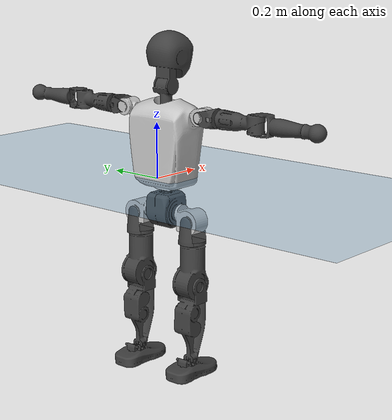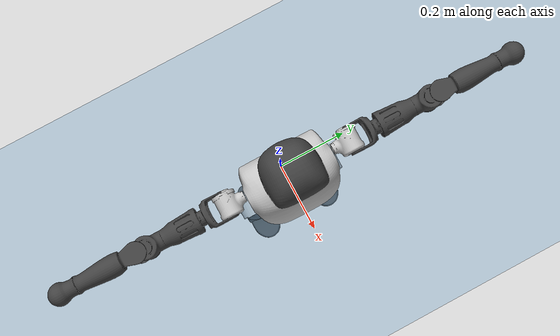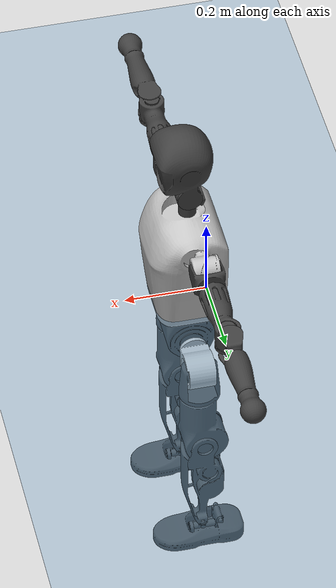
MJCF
<mujoco model="T1">
  <compiler angle="radian" assetdir="assets" balanceinertia="true" inertiafromgeom="false"/>

  <option timestep="0.005" density="1.2" viscosity="2e-05"/>

  <size nkey="1"/>

  <visual>
    <quality shadowsize="8192"/>
    <map shadowclip="0.5"/>
  </visual>

  <default>
    <default class="/">
      <joint armature="0.01" damping="0.01" frictionloss="0.1"/>
      <geom contype="0" conaffinity="0" group="1" solref="-1000 -80"/>
      <site size="0.01 0.005 0.005" group="5"/>
      <general forcelimited="true" biastype="affine" gainprm="25" biasprm="0 -25 -0.6"/>
      <default class="t1">
        <geom rgba="0.25 0.25 0.25 1"/>
        <default class="visual">
          <geom type="mesh" group="2"/>
        </default>
        <default class="collision">
          <geom group="3"/>
        </default>
        <default class="foot">
          <geom size="0.1115 0.05 0.015" type="box" condim="6" group="4" priority="1" solimp="0.015 1 0.015"/>
        </default>
        <default class="reward_collision_sphere">
          <geom group="5" rgba="1 0 0 1"/>
        </default>
      </default>
    </default>
  </default>

  <asset>
    <texture type="skybox" colorspace="auto" name="//unnamed_texture_0" builtin="gradient" rgb1="0.95 0.95 0.95" rgb2="0.95 0.95 0.95" width="100" height="600"/>
    <texture type="2d" colorspace="auto" name="texplane" builtin="checker" rgb1="0.345 0.575 0.748" rgb2="0.345 0.575 0.748" markrgb="1 1 1" width="512" height="512"/>
    <material name="MatPlane" class="/" texture="texplane" texuniform="true" texrepeat="2 2" specular="0.9"/>
    <mesh name="Trunk" class="/" file="Trunk.stl"/>
    <mesh name="H1" class="/" file="H1.stl"/>
    <mesh name="H2" class="/" file="H2.stl"/>
    <mesh name="AL1" class="/" file="AL1.stl"/>
    <mesh name="AL2" class="/" file="AL2.stl"/>
    <mesh name="AL3" class="/" file="AL3.stl"/>
    <mesh name="left_hand_link" class="/" file="left_hand_link.stl"/>
    <mesh name="AR1" class="/" file="AR1.stl"/>
    <mesh name="AR2" class="/" file="AR2.stl"/>
    <mesh name="AR3" class="/" file="AR3.stl"/>
    <mesh name="right_hand_link" class="/" file="right_hand_link.stl"/>
    <mesh name="Waist" class="/" file="Waist.stl"/>
    <mesh name="Hip_Pitch_Left" class="/" file="Hip_Pitch_Left.stl"/>
    <mesh name="Hip_Roll_Left" class="/" file="Hip_Roll_Left.stl"/>
    <mesh name="Hip_Yaw_Left" class="/" file="Hip_Yaw_Left.stl"/>
    <mesh name="Shank_Left" class="/" file="Shank_Left.stl"/>
    <mesh name="Ankle_Cross_Left" class="/" file="Ankle_Cross_Left.stl"/>
    <mesh name="left_foot_link" class="/" file="left_foot_link.stl"/>
    <mesh name="Hip_Pitch_Right" class="/" file="Hip_Pitch_Right.stl"/>
    <mesh name="Hip_Roll_Right" class="/" file="Hip_Roll_Right.stl"/>
    <mesh name="Hip_Yaw_Right" class="/" file="Hip_Yaw_Right.stl"/>
    <mesh name="Shank_Right" class="/" file="Shank_Right.stl"/>
    <mesh name="Ankle_Cross_Right" class="/" file="Ankle_Cross_Right.stl"/>
    <mesh name="right_foot_link" class="/" file="right_foot_link.stl"/>
  </asset>

  <worldbody>
    <geom name="floor" class="/" size="100 100 0.125" type="plane" group="0" material="MatPlane"/>
    <light name="toplight_shadow" class="/" pos="0 0 5" dir="0.0990148 0.0990148 -0.990148" type="directional" ambient="0.04 0.04 0.04" diffuse="0.55 0.55 0.55" specular="0.12 0.12 0.12"/>
    <light name="toplight_fill" class="/" pos="0 0 5" dir="0.0990148 0.0990148 -0.990148" type="directional" castshadow="false" ambient="0.04 0.04 0.04" diffuse="0.3 0.3 0.3" specular="0.08 0.08 0.08"/>
    <body name="trunk" childclass="t1" pos="3.88799e-05 0.000662631 0.000476841" quat="1 -6.866e-05 2.71605e-05 8.41308e-05">
      <inertial pos="0.0398673 0.000896145 0.112465" quat="0.999941 -0.00279907 -0.0104593 -0.000950514" mass="11.6617" diaginertia="0.0214115 0.176674 0.0763679"/>
      <joint name="//unnamed_joint_0" type="free" armature="0" damping="0" frictionloss="0"/>
      <geom name="//unnamed_geom_1" class="visual" rgba="0.76 0.76 0.76 1" mesh="Trunk"/>
      <geom name="//unnamed_geom_2" class="collision" size="0.0746622 0.0995496 0.149324" pos="0.0447465 0 0.127527" type="box"/>
      <geom name="//unnamed_geom_3" class="reward_collision_sphere" size="0.114482" pos="0.0447465 0 0.106273"/>
      <geom name="//unnamed_geom_4" class="reward_collision_sphere" size="0.0149324" pos="0.0447465 0.100129 0"/>
      <geom name="//unnamed_geom_5" class="reward_collision_sphere" size="0.0149324" pos="0.0447465 -0.100129 0"/>
      <geom name="//unnamed_geom_6" class="reward_collision_sphere" size="0.0149324" pos="0.0447465 0.126045 0.191291"/>
      <geom name="//unnamed_geom_7" class="reward_collision_sphere" size="0.0149324" pos="0.0447465 -0.126045 0.191291"/>
      <site name="imu" pos="0.0045187 0.00476093 8.41253e-05" size="0.00995496"/>
      <camera name="track" pos="0 -2.35598 0" quat="0.707107 0.707107 0 0" mode="trackcom"/>
      <camera name="ego_camera" pos="0.0909845 0 0.446345" quat="-0.5 -0.5 0.5 0.5"/>
      <body name="H1" pos="0.046919 -0.000757862 0.258206" quat="1 -8.98559e-07 1.26602e-05 -1.3878e-05">
        <inertial pos="-0.00122453 -0.000321906 0.0605216" quat="0.762924 -0.0152688 0.00276776 0.646302" mass="0.440352" diaginertia="5.53137e-05 0.000508084 0.000204954"/>
        <joint name="AAHead_yaw" pos="0 0 0" axis="0.00346956 0.00223224 0.999991" stiffness="0.00265643" range="-1.57014 1.55399" armature="0.0100634" damping="0.00906188" frictionloss="0.0910848"/>
        <geom name="//unnamed_geom_8" class="visual" mesh="H1"/>
        <body name="H2" pos="-0.000111173 0.000524618 0.0652292" quat="1 -9.73986e-05 -3.95807e-05 5.61522e-05">
          <inertial pos="0.00595114 0.000178576 0.105224" quat="0.987791 0.109361 -0.0748428 -0.0818971" mass="0.619135" diaginertia="0.00046953 0.00435261 0.00231943"/>
          <joint name="Head_pitch" pos="0 0 0" axis="0.00124163 -0.999999 0.000185089" range="-1.21596 0.351393" armature="0.00990384" damping="0.00759524" frictionloss="0.102972"/>
          <geom name="//unnamed_geom_9" class="visual" mesh="H2"/>
          <geom name="//unnamed_geom_10" class="collision" size="0.0796397" pos="0.00745775 0 0.1169"/>
          <geom name="//unnamed_geom_11" class="reward_collision_sphere" size="0.0895947" pos="0.0149155 0 0.106273"/>
        </body>
      </body>
      <body name="AL1" pos="0.0444049 0.125805 0.233753" quat="1 3.88002e-05 -7.12325e-05 -0.000106351">
        <inertial pos="-0.000611298 0.0537719 0.000945087" quat="0.503485 0.49236 -0.504668 0.499395" mass="0.525405" diaginertia="0.000313238 0.00296844 0.000396922"/>
        <joint name="Left_Shoulder_Pitch" pos="0 0 0" axis="-0.00186862 0.999998 0.000675462" range="-3.30406 1.2267" armature="0.00998846" damping="0.0140978" frictionloss="0.0990191"/>
        <geom name="//unnamed_geom_12" class="visual" rgba="0.76 0.76 0.76 1" mesh="AL1"/>
        <body name="AL2" pos="0.000681686 0.0566618 0.00077569" quat="1 -0.000169772 0.000262544 -0.00030462">
          <inertial pos="0.00374589 0.0459384 -0.00109043" quat="0.486012 0.506563 -0.493296 0.513658" mass="0.155936" diaginertia="9.21913e-05 0.000783572 0.000241719"/>
          <joint name="Left_Shoulder_Roll" pos="0 0 0" axis="-0.999999 -0.00143066 0.00089769" range="-1.57093 1.73734" armature="0.00988215" damping="0.00313035" frictionloss="0.0977364"/>
          <geom name="//unnamed_geom_13" class="visual" mesh="AL2"/>
          <body name="AL3" pos="0.000730793 0.0734117 -0.000366104" quat="1 3.47868e-06 -1.01121e-05 -1.89617e-05">
            <inertial pos="-0.00130285 0.100341 0.000686388" quat="0.705899 0.708305 -0.000824897 -0.00305674" mass="1.00509" diaginertia="0.00297926 0.0292579 0.000841877"/>
            <joint name="Left_Elbow_Pitch" pos="0 0 0" axis="0.00139437 -0.99999 0.0041421" range="-2.26343 2.28696" armature="0.00975122" damping="0.00893813" frictionloss="0.100433"/>
            <geom name="//unnamed_geom_14" class="visual" mesh="AL3"/>
            <geom name="//unnamed_geom_15" class="collision" size="0.0298649 0.0746622" pos="0 0.0588994 0" quat="0.707105 0.707108 0 0" type="cylinder"/>
            <geom name="//unnamed_geom_16" class="reward_collision_sphere" size="0.0358379"/>
            <body name="left_hand_link" pos="-0.000492665 0.174699 -0.000269198" quat="1 0.000119918 0.000267795 -2.51873e-05">
              <inertial pos="-0.000177434 0.128677 0.000525454" quat="0.707617 0.706596 -0.00073387 0.000310025" mass="0.325125" diaginertia="0.00187999 0.0185252 0.000289789"/>
              <joint name="Left_Elbow_Yaw" pos="0 0 0" axis="-0.0043911 0.000598864 0.99999" range="-2.46321 0.00662512" armature="0.0100318" damping="0.00280895" frictionloss="0.0993653"/>
              <geom name="//unnamed_geom_17" class="visual" mesh="left_hand_link"/>
              <geom name="//unnamed_geom_18" class="collision" size="0.0298649 0.0871059" pos="0 0.153138 0" quat="0.707105 0.707108 0 0" type="cylinder"/>
              <geom name="//unnamed_geom_19" class="reward_collision_sphere" size="0.0497748"/>
              <geom name="//unnamed_geom_20" class="reward_collision_sphere" size="0.0348424" pos="0 0.129579 0"/>
              <geom name="//unnamed_geom_21" class="reward_collision_sphere" size="0.0348424" pos="0 0.253267 0"/>
            </body>
          </body>
        </body>
      </body>
      <body name="AR1" pos="0.0429878 -0.12456 0.233114" quat="1 2.12633e-05 0.000149894 -3.05976e-05">
        <inertial pos="-0.000212032 -0.0532697 -0.00107755" quat="0.500639 0.496914 -0.507295 0.495065" mass="0.51999" diaginertia="0.000312344 0.00286964 0.000390301"/>
        <joint name="Right_Shoulder_Pitch" pos="0 0 0" axis="0.00304734 -0.999989 -0.00343213" range="-1.22437 3.31073" armature="0.0101997" damping="0.00284499" frictionloss="0.0933443"/>
        <geom name="//unnamed_geom_22" class="visual" rgba="0.76 0.76 0.76 1" mesh="AR1"/>
        <body name="AR2" pos="-0.00136997 -0.055046 -0.000431634" quat="1 0.000103842 8.69376e-05 1.63618e-05">
          <inertial pos="0.0037636 -0.0462204 0.000674213" quat="0.510831 0.485767 -0.510679 0.492228" mass="0.156902" diaginertia="9.08269e-05 0.000782468 0.000235429"/>
          <joint name="Right_Shoulder_Roll" pos="0 0 0" axis="-0.999982 -0.00568747 -0.00194243" stiffness="0.000918933" range="-1.74324 1.57115" armature="0.00999092" damping="0.000578809" frictionloss="0.0995685"/>
          <geom name="//unnamed_geom_23" class="visual" mesh="AR2"/>
          <body name="AR3" pos="0.000228023 -0.0719708 0.000588686" quat="1 0.000215408 -0.000259054 -0.000379403">
            <inertial pos="-0.000638077 -0.100752 -0.000286182" quat="0.708978 0.705224 0.00129857 -0.0028064" mass="0.996483" diaginertia="0.00293892 0.0282186 0.000838148"/>
            <joint name="Right_Elbow_Pitch" pos="0 0 0" axis="0.00172168 0.999998 -0.00105937" range="-2.28166 2.26181" armature="0.0100031" damping="0.00826987" frictionloss="0.101674"/>
            <geom name="//unnamed_geom_24" class="visual" mesh="AR3"/>
            <geom name="//unnamed_geom_25" class="collision" size="0.0298649 0.0746622" pos="0 -0.0588994 0" quat="0.707105 0.707108 0 0" type="cylinder"/>
            <geom name="//unnamed_geom_26" class="reward_collision_sphere" size="0.0358379"/>
            <body name="right_hand_link" pos="-0.000405417 -0.172505 0.00100678" quat="1 -5.66184e-05 -0.00022991 -0.000110834">
              <inertial pos="-1.7121e-05 -0.129415 9.08433e-05" quat="0.706624 0.707588 -0.000121967 -0.00141376" mass="0.319756" diaginertia="0.00186875 0.018297 0.000291434"/>
              <joint name="Right_Elbow_Yaw" pos="0 0 0" axis="-0.0004088 -0.00111019 0.999999" range="-0.014529 2.44027" armature="0.00985328" damping="0.0063529" frictionloss="0.104897"/>
              <geom name="//unnamed_geom_27" class="visual" mesh="right_hand_link"/>
              <geom name="//unnamed_geom_28" class="collision" size="0.0298649 0.0871059" pos="0 -0.153138 0" quat="0.707105 0.707108 0 0" type="cylinder"/>
              <geom name="//unnamed_geom_29" class="reward_collision_sphere" size="0.0497748"/>
              <geom name="//unnamed_geom_30" class="reward_collision_sphere" size="0.0348424" pos="0 -0.129579 0"/>
              <geom name="//unnamed_geom_31" class="reward_collision_sphere" size="0.0348424" pos="0 -0.253267 0"/>
            </body>
          </body>
        </body>
      </body>
      <body name="Waist" pos="0.0474424 -0.000583126 -0.12418" quat="1 -0.000179234 -3.41066e-05 5.89025e-05">
        <inertial pos="-0.000279057 -0.000203875 0.00826374" quat="0.983922 0.00132578 -0.178574 0.00275326" mass="2.5829" diaginertia="0.0012289 0.0121946 0.00645131"/>
        <joint name="Waist" pos="0 0 0" axis="0.000724134 -0.0048685 0.999988" range="-1.55275 1.57519" armature="0.00971485" damping="0.0113906" frictionloss="0.100016"/>
        <geom name="//unnamed_geom_32" class="visual" mesh="Waist"/>
        <body name="Hip_Pitch_Left" pos="0.000356285 0.123924 -0.00152908" quat="1 -6.67139e-05 6.43669e-05 6.30046e-05">
          <inertial pos="0.00063864 -0.00882585 -0.0199633" quat="0.975014 0.221592 0.0154145 -0.00267162" mass="1.02338" diaginertia="0.000416658 0.00329268 0.00170596"/>
          <joint name="Left_Hip_Pitch" pos="0 0 0" axis="-0.000521017 0.999998 -0.00191798" range="-1.802 1.59062" armature="0.0105757" damping="0.00753667" frictionloss="0.0965416"/>
          <geom name="//unnamed_geom_33" class="visual" rgba="0.76 0.76 0.76 1" mesh="Hip_Pitch_Left"/>
          <body name="Hip_Roll_Left" pos="0.000882105 0.00076778 -0.0219998" quat="1 -0.00021234 0.000118092 -1.10323e-05">
            <inertial pos="0.00218479 0.000224324 -0.0581393" quat="0.711029 -0.0063541 -0.00910322 0.703075" mass="0.371207" diaginertia="0.000398373 0.00337476 0.000691998"/>
            <joint name="Left_Hip_Roll" pos="0 0 0" axis="-1 7.48696e-05 -4.38445e-06" range="-1.56985 0.209125" armature="0.0104318" damping="0.0145376" frictionloss="0.104085"/>
            <geom name="//unnamed_geom_34" class="visual" mesh="Hip_Roll_Left"/>
            <geom name="//unnamed_geom_35" class="reward_collision_sphere" size="0.0547523"/>
            <body name="Hip_Yaw_Left" pos="0.000895572 0.000274543 -0.0864869" quat="1 -0.000206118 9.7011e-05 -1.53948e-05">
              <inertial pos="-0.00542578 -0.000529037 -0.0953525" quat="0.697274 -0.0353965 -0.0329851 0.71517" mass="2.14912" diaginertia="0.00595005 0.0567697 0.00352445"/>
              <joint name="Left_Hip_Yaw" pos="0 0 0" axis="0.00074521 0.000635211 -1" range="-0.98706 1.02158" armature="0.0100011" damping="0.0127872" frictionloss="0.098663"/>
              <geom name="//unnamed_geom_36" class="visual" mesh="Hip_Yaw_Left"/>
              <geom name="//unnamed_geom_37" class="collision" size="0.0497748 0.0796397" type="cylinder"/>
              <body name="Shank_Left" pos="-0.00863223 -8.15838e-05 -0.14447" quat="1 -1.41036e-05 3.75351e-06 5.96605e-06">
                <inertial pos="-0.00486488 0.000852127 -0.131648" quat="0.99759 0.00167086 -0.0236623 0.0652098" mass="1.67815" diaginertia="0.00802802 0.0781971 0.00253204"/>
                <joint name="Left_Knee_Pitch" pos="0 0 0" axis="0.00134672 0.999996 0.00245483" range="-0.0212382 2.35991" armature="0.010031" damping="0.00925846" frictionloss="0.0985025"/>
                <geom name="//unnamed_geom_38" class="visual" mesh="Shank_Left"/>
                <geom name="//unnamed_geom_39" class="collision" size="0.0497748 0.0746622" pos="0 0 -0.127527" type="cylinder"/>
                <geom name="//unnamed_geom_40" class="reward_collision_sphere" size="0.0647073"/>
                <body name="Ankle_Cross_Left" pos="-0.0010112 -0.000273573 -0.298292" quat="1 7.17314e-05 0.00012981 0.000251949">
                  <inertial pos="-0.00175118 -0.000265179 -0.00943595" quat="0.443146 0.550423 0.551731 0.443" mass="0.0716791" diaginertia="6.68647e-06 5.8463e-05 1.5311e-05"/>
                  <joint name="Left_Ankle_Pitch" pos="0 0 0" axis="0.000384108 1 0.000348648" range="-0.851581 0.358175" armature="0.0103903" damping="0.0135206" frictionloss="0.098153"/>
                  <geom name="//unnamed_geom_41" class="visual" mesh="Ankle_Cross_Left"/>
                  <body name="left_foot_link" pos="-0.000627468 0.000389178 -0.0129354" quat="1 -3.83093e-05 -0.000213374 0.000443359">
                    <inertial pos="5.65799e-05 0.000220046 -0.00983132" quat="0.000855391 0.621147 0.00122877 0.783692" mass="0.670931" diaginertia="0.000612752 0.00531678 0.00300666"/>
                    <joint name="Left_Ankle_Roll" pos="0 0 0" axis="-0.999992 -0.00328588 0.00243576" range="-0.447852 0.439005" armature="0.00992142" damping="0.0140556" frictionloss="0.0992666"/>
                    <geom name="//unnamed_geom_42" class="visual" mesh="left_foot_link"/>
                    <geom name="left_foot" class="foot" size="0.105362 0.0504834 0.0157075" pos="0.00745775 0 -0.0159409"/>
                    <geom name="//unnamed_geom_44" class="reward_collision_sphere" size="0.0517658" pos="0.00745775 0 -0.0159409"/>
                    <geom name="//unnamed_geom_45" class="reward_collision_sphere" size="0.0298649" pos="0.0708486 -0.0270937 -0.0159409"/>
                    <geom name="//unnamed_geom_46" class="reward_collision_sphere" size="0.0298649" pos="-0.0522042 -0.0270937 -0.0159409"/>
                    <site name="left_foot" class="foot" pos="0.00745775 0 -0.0159409" size="0.00995496"/>
                  </body>
                </body>
              </body>
            </body>
          </body>
        </body>
        <body name="Hip_Pitch_Right" pos="-0.00133942 -0.125094 -0.000605095" quat="1 -0.000108156 3.56825e-05 3.51453e-05">
          <inertial pos="0.00039149 0.00929338 -0.018473" quat="0.973531 -0.228038 0.0150014 -0.00333908" mass="1.0008" diaginertia="0.000413955 0.00330063 0.00164775"/>
          <joint name="Right_Hip_Pitch" pos="0 0 0" axis="0.000574137 -0.999997 -0.00247932" range="-1.57132 1.76948" armature="0.0102581" damping="0.00893929" frictionloss="0.0992205"/>
          <geom name="//unnamed_geom_47" class="visual" rgba="0.76 0.76 0.76 1" mesh="Hip_Pitch_Right"/>
          <body name="Hip_Roll_Right" pos="0.00102027 -0.000425484 -0.0208223" quat="1 -0.000124046 6.62734e-05 0.000381012">
            <inertial pos="0.00101587 -0.000735348 -0.0577151" quat="0.706387 -0.000832535 -0.00977429 0.707758" mass="0.382869" diaginertia="0.000401083 0.0034598 0.000697932"/>
            <joint name="Right_Hip_Roll" pos="0 0 0" axis="-0.999997 0.00159305 -0.00172838" range="-0.168935 1.56967" armature="0.00991119" damping="0.00663653" frictionloss="0.094795"/>
            <geom name="//unnamed_geom_48" class="visual" mesh="Hip_Roll_Right"/>
            <geom name="//unnamed_geom_49" class="reward_collision_sphere" size="0.0547523"/>
            <body name="Hip_Yaw_Right" pos="0.000350227 -2.01058e-05 -0.0870642" quat="1 -5.71567e-05 0.000173124 -8.94049e-06">
              <inertial pos="-0.0050729 0.000437367 -0.0959931" quat="0.713506 -0.0331208 -0.0350727 0.698986" mass="2.14892" diaginertia="0.00591762 0.056776 0.0035502"/>
              <joint name="Right_Hip_Yaw" pos="0 0 0" axis="0.011452 0.00500181 -0.999922" stiffness="0.00145729" range="-0.992837 1.00764" armature="0.0101789" damping="0.00120346" frictionloss="0.0999015"/>
              <geom name="//unnamed_geom_50" class="visual" mesh="Hip_Yaw_Right"/>
              <geom name="//unnamed_geom_51" class="collision" size="0.0497748 0.0796397" type="cylinder"/>
              <body name="Shank_Right" pos="-0.0100454 -0.000435525 -0.141741" quat="1 0.000254126 -0.000204159 0.000341284">
                <inertial pos="-0.0044281 7.38686e-06 -0.130349" quat="0.999302 -0.000956244 -0.0234657 -0.0290651" mass="1.79736" diaginertia="0.00828173 0.0817653 0.00272766"/>
                <joint name="Right_Knee_Pitch" pos="0 0 0" axis="0.00720135 -0.999974 0.00102441" range="-2.32294 -0.0114504" armature="0.0106526" damping="0.00787626" frictionloss="0.0990955"/>
                <geom name="//unnamed_geom_52" class="visual" mesh="Shank_Right"/>
                <geom name="//unnamed_geom_53" class="collision" size="0.0497748 0.0746622" pos="0 0 -0.127527" type="cylinder"/>
                <geom name="//unnamed_geom_54" class="reward_collision_sphere" size="0.0647073"/>
                <body name="Ankle_Cross_Right" pos="0.00064093 -0.000505118 -0.298139" quat="1 5.58401e-05 -6.50166e-05 5.50696e-05">
                  <inertial pos="-0.00287887 0.000849139 -0.00852971" quat="0.443837 0.551776 0.548346 0.444825" mass="0.071019" diaginertia="6.60055e-06 5.73047e-05 1.50884e-05"/>
                  <joint name="Right_Ankle_Pitch" pos="0 0 0" axis="0.00240861 -0.999993 -0.00286621" range="-0.358247 0.857737" armature="0.00997397" damping="0.0102807" frictionloss="0.0981403"/>
                  <geom name="//unnamed_geom_55" class="visual" mesh="Ankle_Cross_Right"/>
                  <body name="right_foot_link" pos="0.00112284 -0.000807761 -0.0119082" quat="1 7.62871e-05 2.46746e-05 3.01505e-05">
                    <inertial pos="-0.0014286 -0.000258309 -0.00985495" quat="-0.000252113 0.620553 -0.000131213 0.784165" mass="0.671779" diaginertia="0.000619915 0.00539919 0.00295372"/>
                    <joint name="Right_Ankle_Roll" pos="0 0 0" axis="-0.999993 -0.000248911 -0.00366943" stiffness="0.00138723" range="-0.46227 0.438663" armature="0.0102052" damping="0.00210738" frictionloss="0.102094"/>
                    <geom name="//unnamed_geom_56" class="visual" mesh="right_foot_link"/>
                    <geom name="right_foot" class="foot" size="0.100453 0.0487623 0.0155988" pos="0.00745775 0 -0.0159409"/>
                    <geom name="//unnamed_geom_58" class="reward_collision_sphere" size="0.0398199"/>
                    <geom name="//unnamed_geom_59" class="reward_collision_sphere" size="0.0298649" pos="0.00745775 0 -0.0159409"/>
                    <geom name="//unnamed_geom_60" class="reward_collision_sphere" size="0.0298649" pos="0.0708486 0.0270937 -0.0159409"/>
                    <geom name="//unnamed_geom_61" class="reward_collision_sphere" size="0.0298649" pos="-0.0522042 0.0270937 -0.0159409"/>
                    <site name="right_foot" class="foot" pos="0.00745775 0 -0.0159409" size="0.00995496"/>
                  </body>
                </body>
              </body>
            </body>
          </body>
        </body>
      </body>
    </body>
  </worldbody>

  <contact>
    <pair class="/" geom1="floor" geom2="left_foot" name="//unnamed_contact_0"/>
    <pair class="/" geom1="floor" geom2="right_foot" name="//unnamed_contact_1"/>
  </contact>

  <actuator>
    <general name="AAHead_yaw" class="/" joint="AAHead_yaw" forcerange="-6.92665 6.92665" gainprm="25.1351" biasprm="0 -25.1351 -0.579675"/>
    <general name="Head_pitch" class="/" joint="Head_pitch" forcerange="-6.95061 6.95061" gainprm="25.1351" biasprm="0 -25.1351 -0.579675"/>
    <general name="Left_Shoulder_Pitch" class="/" joint="Left_Shoulder_Pitch" forcerange="-18.4222 18.4222" gainprm="25.1351" biasprm="0 -25.1351 -0.579675"/>
    <general name="Left_Shoulder_Roll" class="/" joint="Left_Shoulder_Roll" forcerange="-18.079 18.079" gainprm="25.1351" biasprm="0 -25.1351 -0.579675"/>
    <general name="Left_Elbow_Pitch" class="/" joint="Left_Elbow_Pitch" forcerange="-17.8851 17.8851" gainprm="25.1351" biasprm="0 -25.1351 -0.579675"/>
    <general name="Left_Elbow_Yaw" class="/" joint="Left_Elbow_Yaw" forcerange="-18.3457 18.3457" gainprm="25.1351" biasprm="0 -25.1351 -0.579675"/>
    <general name="Right_Shoulder_Pitch" class="/" joint="Right_Shoulder_Pitch" forcerange="-17.6453 17.6453" gainprm="25.1351" biasprm="0 -25.1351 -0.579675"/>
    <general name="Right_Shoulder_Roll" class="/" joint="Right_Shoulder_Roll" forcerange="-18.5645 18.5645" gainprm="25.1351" biasprm="0 -25.1351 -0.579675"/>
    <general name="Right_Elbow_Pitch" class="/" joint="Right_Elbow_Pitch" forcerange="-18.6236 18.6236" gainprm="25.1351" biasprm="0 -25.1351 -0.579675"/>
    <general name="Right_Elbow_Yaw" class="/" joint="Right_Elbow_Yaw" forcerange="-17.4556 17.4556" gainprm="25.1351" biasprm="0 -25.1351 -0.579675"/>
    <general name="Waist" class="/" joint="Waist" forcerange="-29.0332 29.0332" gainprm="25.1351" biasprm="0 -25.1351 -0.579675"/>
    <general name="Left_Hip_Pitch" class="/" joint="Left_Hip_Pitch" forcerange="-44.22 44.22" gainprm="25.1351" biasprm="0 -25.1351 -0.579675"/>
    <general name="Left_Hip_Roll" class="/" joint="Left_Hip_Roll" forcerange="-29.6835 29.6835" gainprm="25.1351" biasprm="0 -25.1351 -0.579675"/>
    <general name="Left_Hip_Yaw" class="/" joint="Left_Hip_Yaw" forcerange="-29.7579 29.7579" gainprm="25.1351" biasprm="0 -25.1351 -0.579675"/>
    <general name="Left_Knee_Pitch" class="/" joint="Left_Knee_Pitch" forcerange="-60.4827 60.4827" gainprm="25.1351" biasprm="0 -25.1351 -0.579675"/>
    <general name="Left_Ankle_Pitch" class="/" joint="Left_Ankle_Pitch" forcerange="-19.7798 19.7798" gainprm="25.1351" biasprm="0 -25.1351 -0.579675"/>
    <general name="Left_Ankle_Roll" class="/" joint="Left_Ankle_Roll" forcerange="-15.2391 15.2391" gainprm="25.1351" biasprm="0 -25.1351 -0.579675"/>
    <general name="Right_Hip_Pitch" class="/" joint="Right_Hip_Pitch" forcerange="-44.7751 44.7751" gainprm="25.1351" biasprm="0 -25.1351 -0.579675"/>
    <general name="Right_Hip_Roll" class="/" joint="Right_Hip_Roll" forcerange="-29.8785 29.8785" gainprm="25.1351" biasprm="0 -25.1351 -0.579675"/>
    <general name="Right_Hip_Yaw" class="/" joint="Right_Hip_Yaw" forcerange="-31.2723 31.2723" gainprm="25.1351" biasprm="0 -25.1351 -0.579675"/>
    <general name="Right_Knee_Pitch" class="/" joint="Right_Knee_Pitch" forcerange="-59.6369 59.6369" gainprm="25.1351" biasprm="0 -25.1351 -0.579675"/>
    <general name="Right_Ankle_Pitch" class="/" joint="Right_Ankle_Pitch" forcerange="-19.6226 19.6226" gainprm="25.1351" biasprm="0 -25.1351 -0.579675"/>
    <general name="Right_Ankle_Roll" class="/" joint="Right_Ankle_Roll" forcerange="-15.4165 15.4165" gainprm="25.1351" biasprm="0 -25.1351 -0.579675"/>
  </actuator>

  <sensor>
    <gyro site="imu" name="imu_angular_velocity"/>
    <velocimeter site="imu" name="imu_linear_velocity"/>
    <framelinvel objtype="site" objname="left_foot" name="left_foot_global_linear_velocity"/>
    <framelinvel objtype="site" objname="right_foot" name="right_foot_global_linear_velocity"/>
  </sensor>

  <keyframe>
    <key name="home" qpos="0 0 0.6385 1 0 0 0 0 0 0 1.4 0 -0.4 0 -1.4 0 0.4 0 -0.4 0 0 0.8 -0.4 0 0.4 0 0 -0.8 0.4 0"/>
  </keyframe>
</mujoco>
